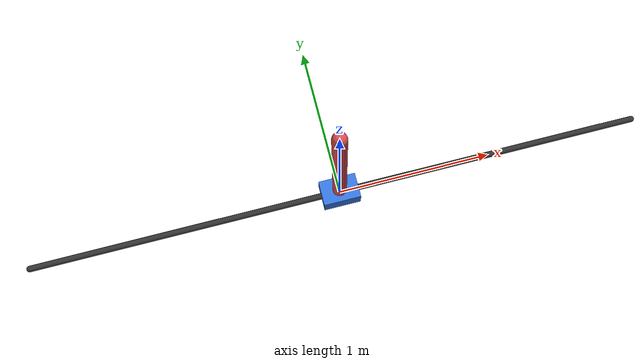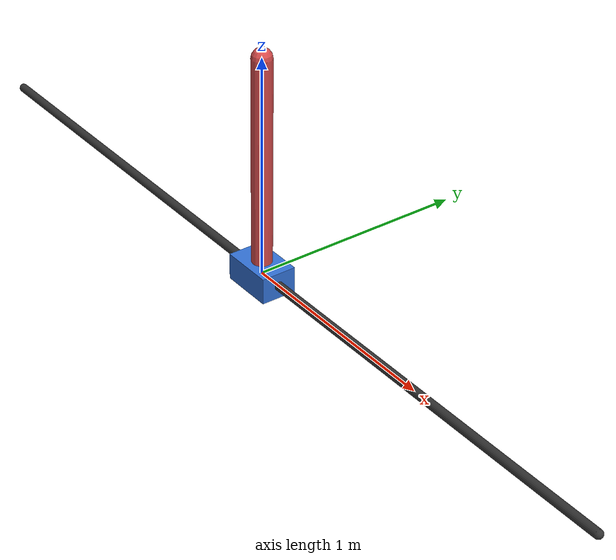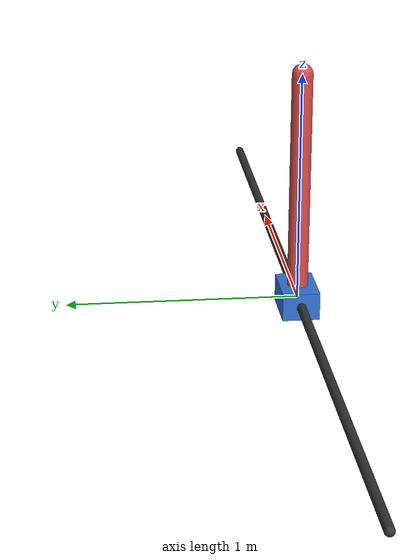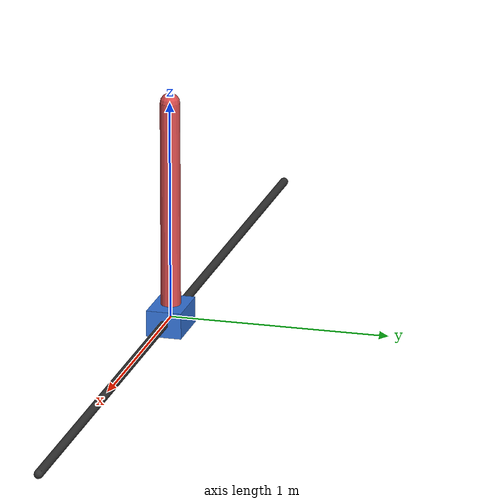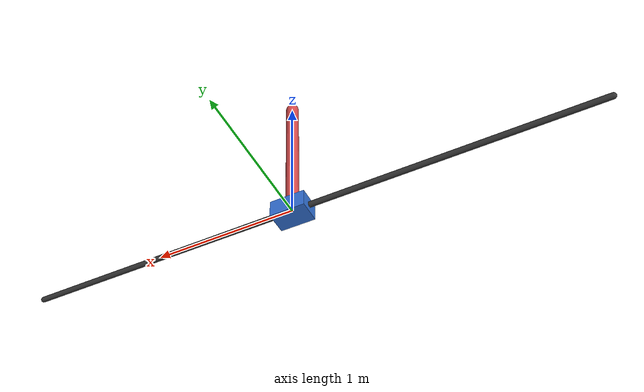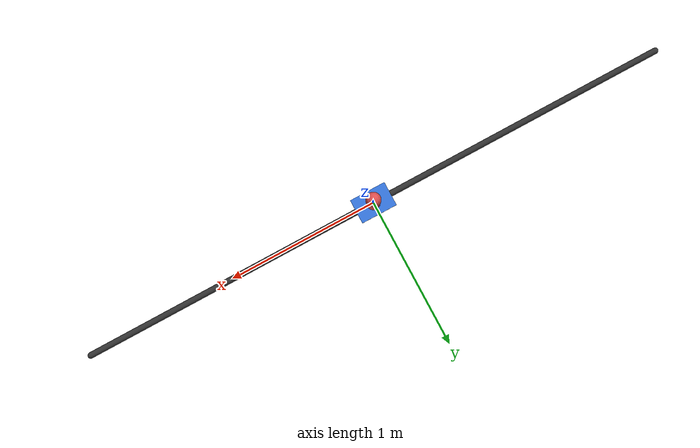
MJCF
<mujoco model="cartpole_dm_like_swingup">
  <compiler angle="radian"/>
  <option timestep="0.01" gravity="0 0 -9.81"/>

  <default>
    <joint damping="0.01"/>
    <geom conaffinity="0" contype="0" rgba="0.7 0.7 0.7 1"/>
  </default>

  <visual>
    <headlight ambient="0.4 0.4 0.4" diffuse="0.8 0.8 0.8" specular="0.1 0.1 0.1"/>
  </visual>

  <worldbody>
    <light name="main_light" pos="0 -3 4" dir="0 0 -1"/>

    <geom
      name="rail"
      type="capsule"
      fromto="-2 0 0 2 0 0"
      size="0.02"
      rgba="0.2 0.2 0.2 1"/>

    <body name="cart" pos="0 0 0">
      <joint
        name="slider"
        type="slide"
        axis="1 0 0"
        range="-2 2"
        limited="true"
        damping="0.1"/>

      <geom
        name="cart_geom"
        type="box"
        size="0.12 0.08 0.06"
        mass="1.0"
        rgba="0.2 0.45 0.85 1"/>

      <body name="pole_root" pos="0 0 0">
        <joint
          name="hinge"
          type="hinge"
          axis="0 1 0"
          damping="0.02"/>

        <geom
          name="pole_geom"
          type="capsule"
          fromto="0 0 0 0 0 1"
          size="0.045"
          mass="0.1"
          rgba="0.85 0.3 0.3 1"/>
      </body>
    </body>

    <camera name="side" pos="0 -3.2 0.9" xyaxes="1 0 0 0 1 2.8"/>
  </worldbody>

  <actuator>
    <motor
      name="cart_motor"
      joint="slider"
      gear="100"
      ctrllimited="true"
      ctrlrange="-1 1"/>
  </actuator>
</mujoco>
